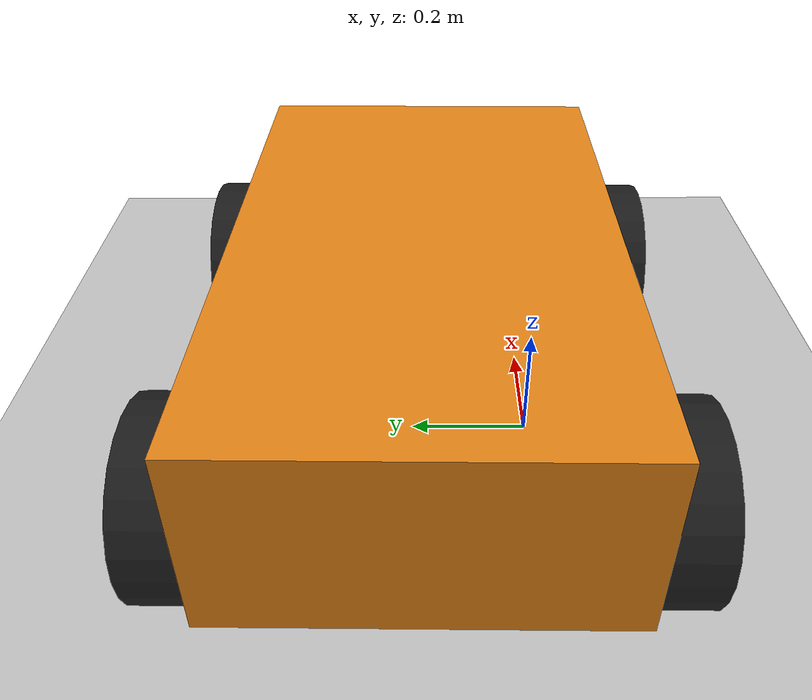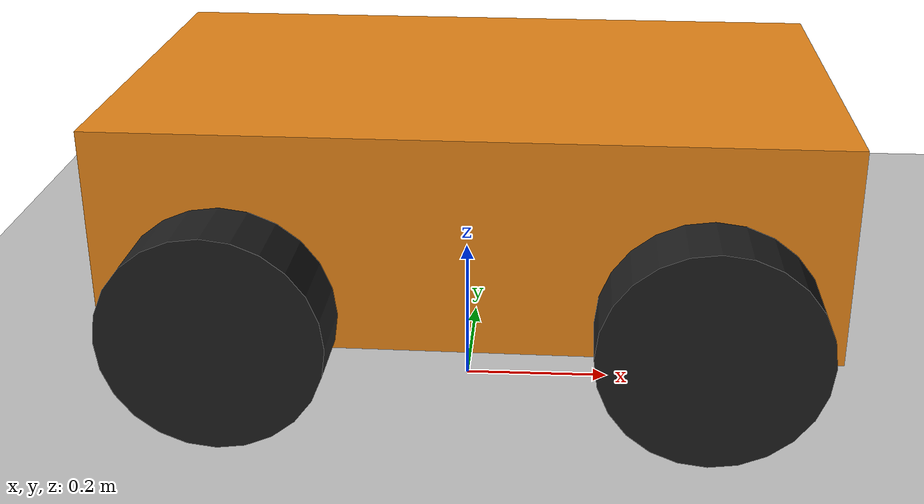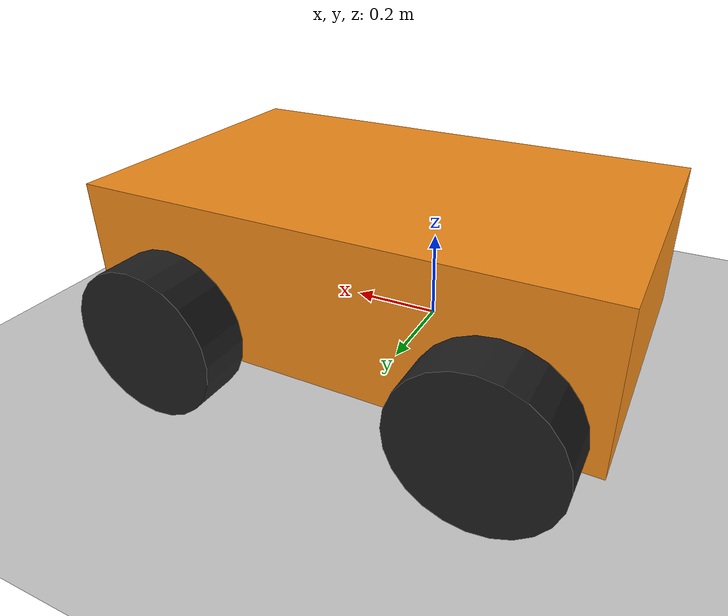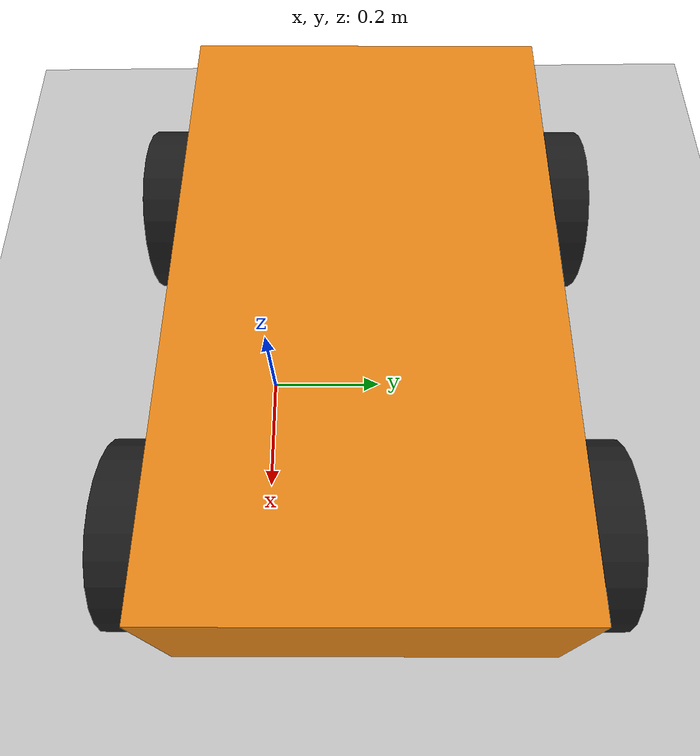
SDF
<sdf version="1.7">
 <world name="default">
  <light name="sun" type="directional">
   <pose>0 0 10 0 -0 0</pose>
   <diffuse>0.8 0.8 0.8 1</diffuse>
   <specular>0.2 0.2 0.2 1</specular>
   <attenuation>
    <range>1000</range>
    <constant>0.9</constant>
    <linear>0.01</linear>
    <quadratic>0.001</quadratic>
   </attenuation>
   <direction>-0.5 0.1 -0.9</direction>
   <spot><inner_angle>0</inner_angle><outer_angle>0</outer_angle><falloff>0</falloff></spot>
  </light>
  <model name="ground_plane">
   <static>1</static>
   <link name="link">
    <collision name="collision">
     <geometry><plane><normal>0 0 1</normal><size>100 100</size></plane></geometry>
     <surface><friction><ode><mu>100</mu><mu2>50</mu2></ode></friction></surface>
    </collision>
    <visual name="visual">
     <cast_shadows>0</cast_shadows>
     <geometry><plane><normal>0 0 1</normal><size>100 100</size></plane></geometry>
     <material>
      <script><uri>file://media/materials/scripts/gazebo.material</uri><name>Gazebo/Grey</name></script>
     </material>
    </visual>
   </link>
  </model>
  <gravity>0 0 -9.8</gravity>
  <magnetic_field>6e-06 2.3e-05 -4.2e-05</magnetic_field>
  <atmosphere type="adiabatic"/>
  <physics type="ode">
   <max_step_size>0.001</max_step_size>
   <real_time_factor>1</real_time_factor>
   <real_time_update_rate>1000</real_time_update_rate>
  </physics>
  <scene><ambient>0.4 0.4 0.4 1</ambient><background>0.7 0.7 0.7 1</background><shadows>1</shadows></scene>
  <audio><device>default</device></audio>
  <spherical_coordinates>
   <surface_model>EARTH_WGS84</surface_model>
   <latitude_deg>0</latitude_deg>
   <longitude_deg>0</longitude_deg>
   <elevation>0</elevation>
   <heading_deg>0</heading_deg>
  </spherical_coordinates>
  <model name="diff_drive_robo">
   <link name="base_link">
    <inertial>
     <mass>487.8</mass>
     <inertia><ixx>18.2925</ixx><ixy>0</ixy><ixz>0</ixz><iyy>44.3085</iyy><iyz>0</iyz><izz>55.284</izz></inertia>
    </inertial>
    <collision name="base_link_fixed_joint_lump__chassis_collision">
     <geometry><box><size>1 0.6 0.3</size></box></geometry>
     <surface><friction><ode><mu>0.2</mu><mu2>0.2</mu2></ode></friction></surface>
    </collision>
    <visual name="base_link_fixed_joint_lump__chassis_visual">
     <geometry><box><size>1 0.6 0.3</size></box></geometry>
     <material>
      <script><name>Gazebo/Orange</name><uri>file://media/materials/scripts/gazebo.material</uri></script>
     </material>
    </visual>
   </link>
   <joint name="back_left_wheel_joint" type="revolute">
    <pose relative_to="base_link">-0.32 0.35 -0.1 0 -0 0</pose>
    <parent>base_link</parent>
    <child>back_left_wheel</child>
    <axis>
     <xyz>0 1 0</xyz>
     <limit><lower>-1e+16</lower><upper>1e+16</upper></limit>
     <dynamics><spring_reference>0</spring_reference><spring_stiffness>0</spring_stiffness></dynamics>
    </axis>
   </joint>
   <link name="back_left_wheel">
    <pose relative_to="back_left_wheel_joint">0 0 0 0 -0 0</pose>
    <inertial>
     <mass>19.1559</mass>
     <inertia>
      <ixx>0.123715</ixx>
      <ixy>0</ixy>
      <ixz>0</ixz>
      <iyy>0.123715</iyy>
      <iyz>0</iyz>
      <izz>0.215504</izz>
     </inertia>
    </inertial>
    <collision name="back_left_wheel_collision">
     <pose>0 0 0 1.571 -0 0</pose>
     <geometry><cylinder><length>0.1</length><radius>0.15</radius></cylinder></geometry>
     <surface><friction><ode><mu>0.2</mu><mu2>0.2</mu2></ode></friction></surface>
    </collision>
    <visual name="back_left_wheel_visual">
     <pose>0 0 0 1.571 -0 0</pose>
     <geometry><cylinder><length>0.1</length><radius>0.15</radius></cylinder></geometry>
     <material>
      <script><name>Gazebo/Black</name><uri>file://media/materials/scripts/gazebo.material</uri></script>
     </material>
    </visual>
   </link>
   <joint name="back_right_wheel_joint" type="revolute">
    <pose relative_to="base_link">-0.32 -0.35 -0.1 0 -0 0</pose>
    <parent>base_link</parent>
    <child>back_right_wheel</child>
    <axis>
     <xyz>0 1 0</xyz>
     <limit><lower>-1e+16</lower><upper>1e+16</upper></limit>
     <dynamics><spring_reference>0</spring_reference><spring_stiffness>0</spring_stiffness></dynamics>
    </axis>
   </joint>
   <link name="back_right_wheel">
    <pose relative_to="back_right_wheel_joint">0 0 0 0 -0 0</pose>
    <inertial>
     <mass>19.1559</mass>
     <inertia>
      <ixx>0.123715</ixx>
      <ixy>0</ixy>
      <ixz>0</ixz>
      <iyy>0.123715</iyy>
      <iyz>0</iyz>
      <izz>0.215504</izz>
     </inertia>
    </inertial>
    <collision name="back_right_wheel_collision">
     <pose>0 0 0 1.571 -0 0</pose>
     <geometry><cylinder><length>0.1</length><radius>0.15</radius></cylinder></geometry>
     <surface><friction><ode><mu>0.2</mu><mu2>0.2</mu2></ode></friction></surface>
    </collision>
    <visual name="back_right_wheel_visual">
     <pose>0 0 0 1.571 -0 0</pose>
     <geometry><cylinder><length>0.1</length><radius>0.15</radius></cylinder></geometry>
     <material>
      <script><name>Gazebo/Black</name><uri>file://media/materials/scripts/gazebo.material</uri></script>
     </material>
    </visual>
   </link>
   <joint name="front_left_wheel_joint" type="revolute">
    <pose relative_to="base_link">0.32 0.35 -0.1 0 -0 0</pose>
    <parent>base_link</parent>
    <child>front_left_wheel</child>
    <axis>
     <xyz>0 1 0</xyz>
     <limit><lower>-1e+16</lower><upper>1e+16</upper></limit>
     <dynamics><spring_reference>0</spring_reference><spring_stiffness>0</spring_stiffness></dynamics>
    </axis>
   </joint>
   <link name="front_left_wheel">
    <pose relative_to="front_left_wheel_joint">0 0 0 0 -0 0</pose>
    <inertial>
     <mass>19.1559</mass>
     <inertia>
      <ixx>0.123715</ixx>
      <ixy>0</ixy>
      <ixz>0</ixz>
      <iyy>0.123715</iyy>
      <iyz>0</iyz>
      <izz>0.215504</izz>
     </inertia>
    </inertial>
    <collision name="front_left_wheel_collision">
     <pose>0 0 0 1.571 -0 0</pose>
     <geometry><cylinder><length>0.1</length><radius>0.15</radius></cylinder></geometry>
     <surface><friction><ode><mu>0.2</mu><mu2>0.2</mu2></ode></friction></surface>
    </collision>
    <visual name="front_left_wheel_visual">
     <pose>0 0 0 1.571 -0 0</pose>
     <geometry><cylinder><length>0.1</length><radius>0.15</radius></cylinder></geometry>
     <material>
      <script><name>Gazebo/Black</name><uri>file://media/materials/scripts/gazebo.material</uri></script>
     </material>
    </visual>
   </link>
   <joint name="front_right_wheel_joint" type="revolute">
    <pose relative_to="base_link">0.32 -0.35 -0.1 0 -0 0</pose>
    <parent>base_link</parent>
    <child>front_right_wheel</child>
    <axis>
     <xyz>0 1 0</xyz>
     <limit><lower>-1e+16</lower><upper>1e+16</upper></limit>
     <dynamics><spring_reference>0</spring_reference><spring_stiffness>0</spring_stiffness></dynamics>
    </axis>
   </joint>
   <link name="front_right_wheel">
    <pose relative_to="front_right_wheel_joint">0 0 0 0 -0 0</pose>
    <inertial>
     <mass>19.1559</mass>
     <inertia>
      <ixx>0.123715</ixx>
      <ixy>0</ixy>
      <ixz>0</ixz>
      <iyy>0.123715</iyy>
      <iyz>0</iyz>
      <izz>0.215504</izz>
     </inertia>
    </inertial>
    <collision name="front_right_wheel_collision">
     <pose>0 0 0 1.571 -0 0</pose>
     <geometry><cylinder><length>0.1</length><radius>0.15</radius></cylinder></geometry>
     <surface><friction><ode><mu>0.2</mu><mu2>0.2</mu2></ode></friction></surface>
    </collision>
    <visual name="front_right_wheel_visual">
     <pose>0 0 0 1.571 -0 0</pose>
     <geometry><cylinder><length>0.1</length><radius>0.15</radius></cylinder></geometry>
     <material>
      <script><name>Gazebo/Black</name><uri>file://media/materials/scripts/gazebo.material</uri></script>
     </material>
    </visual>
   </link>
   <static>0</static>
   <plugin name="skid_steer_drive" filename="libgazebo_ros_diff_drive.so">
    <num_wheel_pairs>2</num_wheel_pairs>
    <left_joint>front_left_wheel_joint</left_joint>
    <right_joint>front_right_wheel_joint</right_joint>
    <left_joint>back_left_wheel_joint</left_joint>
    <right_joint>back_right_wheel_joint</right_joint>
    <wheel_separation>0.4</wheel_separation>
    <wheel_separation>0.4</wheel_separation>
    <max_wheel_torque>1000</max_wheel_torque>
    <max_wheel_torque>5</max_wheel_torque>
    <publish_odom>1</publish_odom>
    <publish_odom_tf>1</publish_odom_tf>
    <publish_wheel_tf>1</publish_wheel_tf>
    <odometry_frame>odom</odometry_frame>
    <robot_base_frame>base_link</robot_base_frame>
   </plugin>
   <pose>0.009496 0.175552 0.25 0 -1e-06 -0.014781</pose>
  </model>
 </world>
</sdf>
